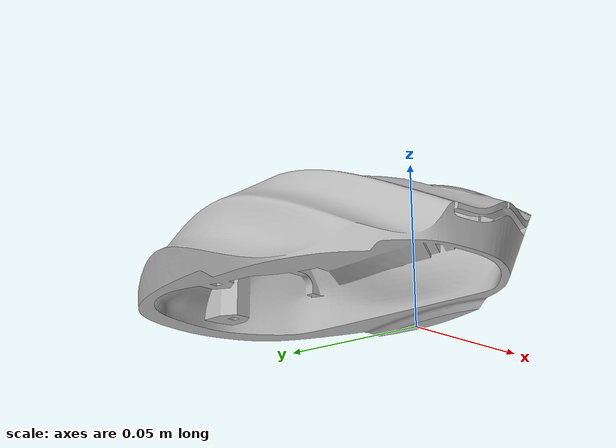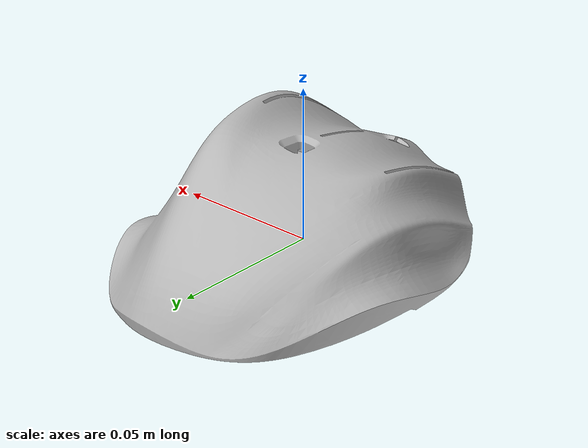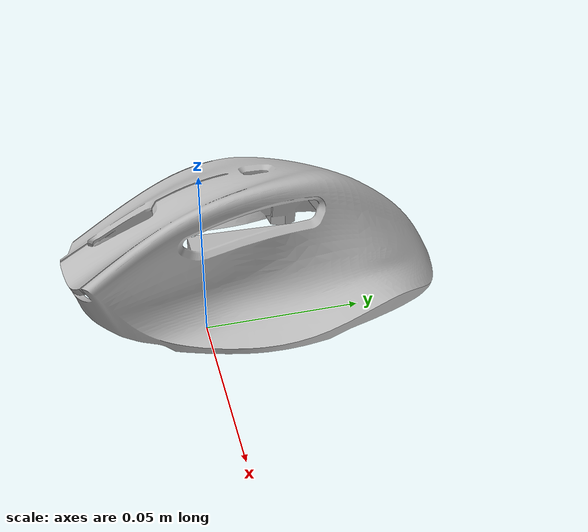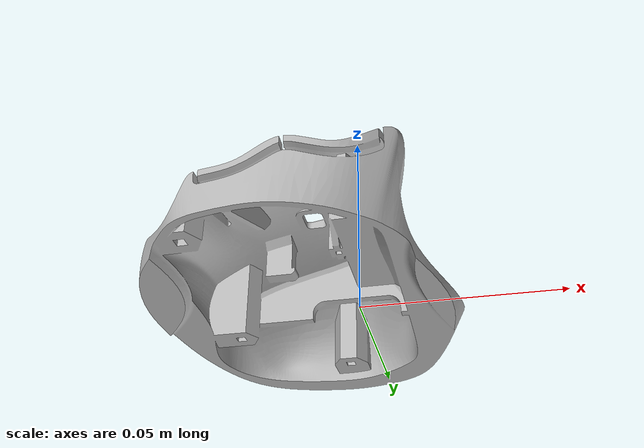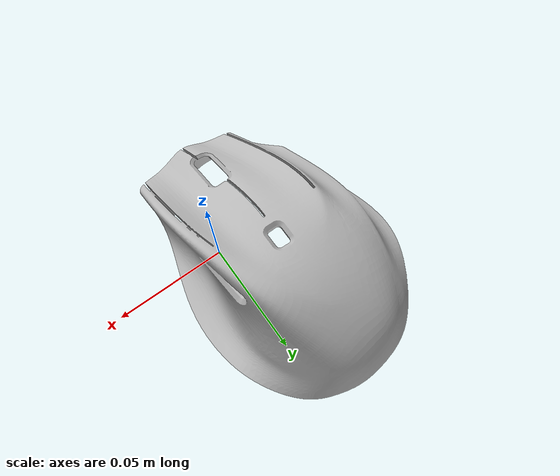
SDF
<?xml version="1.0" ?>
<sdf version="1.4">
  <model name="mouse">
    <static>false</static>

    <link name="link">
      <pose>0.0 0 0.0 0 0 0</pose>
<inertial>
        <mass>0.1</mass>
      </inertial>
     <collision name='collision'>
     <geometry>
          <mesh>
            <uri>file:///home/austin/EECS484_project/simulation/src/image_recognition/mouse/meshes/mouse.dae</uri>
          </mesh>
        </geometry>
      </collision>

      <visual name="visual">
        <geometry>
          <mesh>
           <uri>file:///home/austin/EECS484_project/simulation/src/image_recognition/mouse/meshes/mouse.dae</uri>
          </mesh>
        </geometry>
      </visual>
    </link>
  </model>
</sdf>
